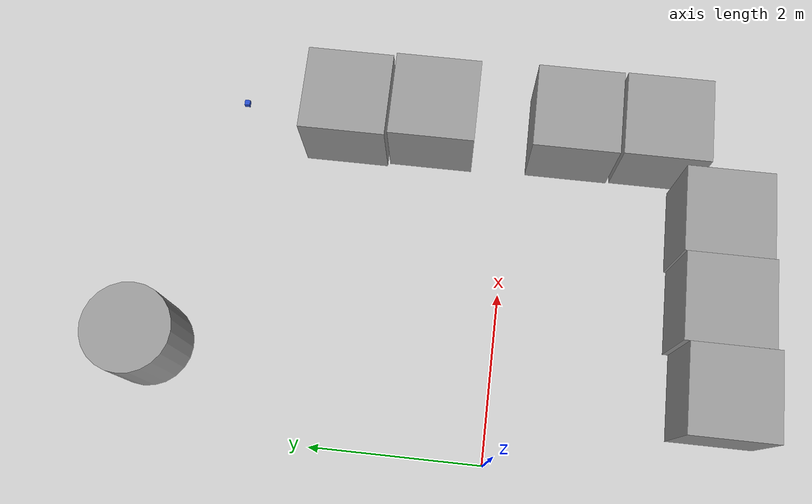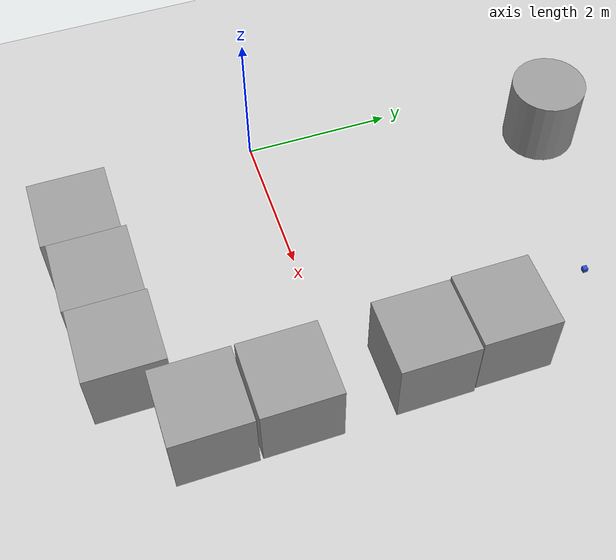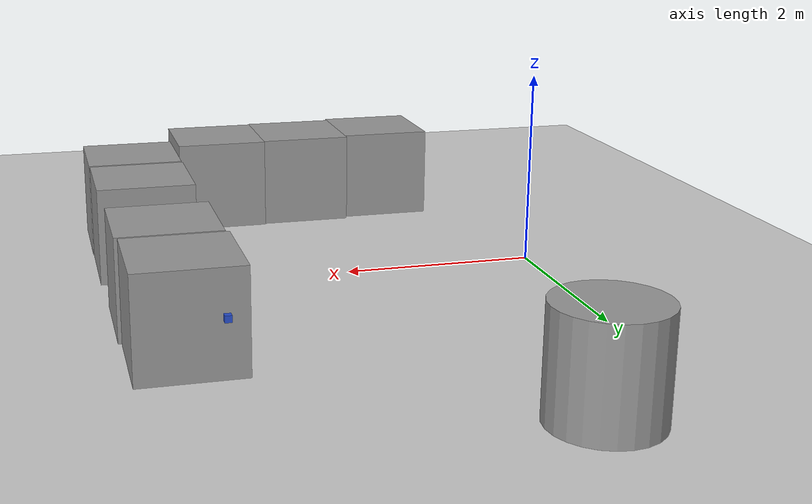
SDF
<sdf version="1.4">
 <world name="default">
  <model name="ground_plane">
   <static>1</static>
   <link name="link">
    <collision name="collision">
     <geometry><plane><normal>0 0 1</normal><size>100 100</size></plane></geometry>
     <surface><friction><ode><mu>100</mu><mu2>50</mu2></ode></friction></surface>
    </collision>
    <visual name="visual">
     <cast_shadows>0</cast_shadows>
     <geometry><plane><normal>0 0 1</normal><size>100 100</size></plane></geometry>
     <material>
      <script><uri>file://media/materials/scripts/gazebo.material</uri><name>Gazebo/Grey</name></script>
     </material>
    </visual>
    <velocity_decay><linear>0</linear><angular>0</angular></velocity_decay>
   </link>
  </model>
  <light name="sun" type="directional">
   <pose>0 0 10 0 -0 0</pose>
   <diffuse>0.8 0.8 0.8 1</diffuse>
   <specular>0.2 0.2 0.2 1</specular>
   <attenuation>
    <range>1000</range>
    <constant>0.9</constant>
    <linear>0.01</linear>
    <quadratic>0.001</quadratic>
   </attenuation>
   <direction>-0.5 0.1 -0.9</direction>
  </light>
  <model name="demo_cube">
   <static>0</static>
   <link name="link">
    <inertial>
     <mass>0.25</mass>
     <inertia><ixx>0.001</ixx><ixy>0</ixy><ixz>0</ixz><iyy>0.001</iyy><iyz>0</iyz><izz>0.001</izz></inertia>
    </inertial>
    <collision name="collision">
     <geometry><box><size>0.06 0.06 0.06</size></box></geometry>
     <surface>
      <friction><ode><mu>30</mu><mu2>30</mu2></ode></friction>
      <contact><ode><kp>1e+06</kp><kd>100</kd><max_vel>1</max_vel><min_depth>0.002</min_depth></ode></contact>
     </surface>
    </collision>
    <visual name="visual">
     <geometry><box><size>0.06 0.06 0.06</size></box></geometry>
     <material>
      <script><uri>file://media/materials/scripts/gazebo.material</uri><name>Gazebo/Blue</name></script>
     </material>
    </visual>
    <velocity_decay><linear>0</linear><angular>0</angular></velocity_decay>
   </link>
   <pose>3.8 3.15 0.802999 0 -0 0</pose>
  </model>
  <physics type="ode">
   <max_step_size>0.001</max_step_size>
   <real_time_factor>1</real_time_factor>
   <real_time_update_rate>1000</real_time_update_rate>
   <gravity>0 0 -9.8</gravity>
  </physics>
  <scene><ambient>0.4 0.4 0.4 1</ambient><background>0.7 0.7 0.7 1</background><shadows>1</shadows></scene>
  <spherical_coordinates>
   <surface_model>EARTH_WGS84</surface_model>
   <latitude_deg>0</latitude_deg>
   <longitude_deg>0</longitude_deg>
   <elevation>0</elevation>
   <heading_deg>0</heading_deg>
  </spherical_coordinates>
  <model name="unit_box_1">
   <pose>0.999999 -2.54836 0.5 0 -0 1e-06</pose>
   <link name="link">
    <inertial>
     <mass>1</mass>
     <inertia><ixx>1</ixx><ixy>0</ixy><ixz>0</ixz><iyy>1</iyy><iyz>0</iyz><izz>1</izz></inertia>
    </inertial>
    <collision name="collision"><geometry><box><size>1 1 1</size></box></geometry></collision>
    <visual name="visual">
     <geometry><box><size>1 1 1</size></box></geometry>
     <material>
      <script><uri>file://media/materials/scripts/gazebo.material</uri><name>Gazebo/Grey</name></script>
     </material>
    </visual>
    <velocity_decay><linear>0</linear><angular>0</angular></velocity_decay>
   </link>
   <static>0</static>
  </model>
  <model name="unit_box_2">
   <pose>4.03343 0.969941 0.5 0 -0 0</pose>
   <link name="link">
    <inertial>
     <mass>1</mass>
     <inertia><ixx>1</ixx><ixy>0</ixy><ixz>0</ixz><iyy>1</iyy><iyz>0</iyz><izz>1</izz></inertia>
    </inertial>
    <collision name="collision"><geometry><box><size>1 1 1</size></box></geometry></collision>
    <visual name="visual">
     <geometry><box><size>1 1 1</size></box></geometry>
     <material>
      <script><uri>file://media/materials/scripts/gazebo.material</uri><name>Gazebo/Grey</name></script>
     </material>
    </visual>
    <velocity_decay><linear>0</linear><angular>0</angular></velocity_decay>
   </link>
   <static>0</static>
  </model>
  <model name="unit_cylinder_1">
   <pose>1 4 0.499992 0 -0 0</pose>
   <link name="link">
    <inertial>
     <mass>1</mass>
     <inertia><ixx>1</ixx><ixy>0</ixy><ixz>0</ixz><iyy>1</iyy><iyz>0</iyz><izz>1</izz></inertia>
    </inertial>
    <collision name="collision">
     <geometry><cylinder><radius>0.5</radius><length>1</length></cylinder></geometry>
    </collision>
    <visual name="visual">
     <geometry><cylinder><radius>0.5</radius><length>1</length></cylinder></geometry>
     <material>
      <script><uri>file://media/materials/scripts/gazebo.material</uri><name>Gazebo/Grey</name></script>
     </material>
    </visual>
    <velocity_decay><linear>0</linear><angular>0</angular></velocity_decay>
   </link>
   <static>0</static>
  </model>
  <model name="unit_box_3">
   <pose>4.06195 -0.696635 0.5 0 -0 0</pose>
   <link name="link">
    <inertial>
     <mass>1</mass>
     <inertia><ixx>1</ixx><ixy>0</ixy><ixz>0</ixz><iyy>1</iyy><iyz>0</iyz><izz>1</izz></inertia>
    </inertial>
    <collision name="collision"><geometry><box><size>1 1 1</size></box></geometry></collision>
    <visual name="visual">
     <geometry><box><size>1 1 1</size></box></geometry>
     <material>
      <script><uri>file://media/materials/scripts/gazebo.material</uri><name>Gazebo/Grey</name></script>
     </material>
    </visual>
    <velocity_decay><linear>0</linear><angular>0</angular></velocity_decay>
   </link>
   <static>0</static>
  </model>
  <model name="unit_box_1_0">
   <pose>4.06894 -1.73505 0.5 0 -0 2e-06</pose>
   <link name="link">
    <inertial>
     <mass>1</mass>
     <inertia><ixx>1</ixx><ixy>0</ixy><ixz>0</ixz><iyy>1</iyy><iyz>0</iyz><izz>1</izz></inertia>
    </inertial>
    <collision name="collision"><geometry><box><size>1 1 1</size></box></geometry></collision>
    <visual name="visual">
     <geometry><box><size>1 1 1</size></box></geometry>
     <material>
      <script><uri>file://media/materials/scripts/gazebo.material</uri><name>Gazebo/Grey</name></script>
     </material>
    </visual>
    <velocity_decay><linear>0</linear><angular>0</angular></velocity_decay>
   </link>
   <static>0</static>
  </model>
  <model name="unit_box_2_0">
   <pose>3 -2.45496 0.5 0 -0 1e-06</pose>
   <link name="link">
    <inertial>
     <mass>1</mass>
     <inertia><ixx>1</ixx><ixy>0</ixy><ixz>0</ixz><iyy>1</iyy><iyz>0</iyz><izz>1</izz></inertia>
    </inertial>
    <collision name="collision"><geometry><box><size>1 1 1</size></box></geometry></collision>
    <visual name="visual">
     <geometry><box><size>1 1 1</size></box></geometry>
     <material>
      <script><uri>file://media/materials/scripts/gazebo.material</uri><name>Gazebo/Grey</name></script>
     </material>
    </visual>
    <velocity_decay><linear>0</linear><angular>0</angular></velocity_decay>
   </link>
   <static>0</static>
  </model>
  <model name="unit_box_3_0">
   <pose>2 -2.48241 0.5 0 -0 1e-06</pose>
   <link name="link">
    <inertial>
     <mass>1</mass>
     <inertia><ixx>1</ixx><ixy>0</ixy><ixz>0</ixz><iyy>1</iyy><iyz>0</iyz><izz>1</izz></inertia>
    </inertial>
    <collision name="collision"><geometry><box><size>1 1 1</size></box></geometry></collision>
    <visual name="visual">
     <geometry><box><size>1 1 1</size></box></geometry>
     <material>
      <script><uri>file://media/materials/scripts/gazebo.material</uri><name>Gazebo/Grey</name></script>
     </material>
    </visual>
    <velocity_decay><linear>0</linear><angular>0</angular></velocity_decay>
   </link>
   <static>0</static>
  </model>
  <model name="unit_box_4">
   <pose>4 2 0.5 0 -0 0</pose>
   <link name="link">
    <inertial>
     <mass>1</mass>
     <inertia><ixx>1</ixx><ixy>0</ixy><ixz>0</ixz><iyy>1</iyy><iyz>0</iyz><izz>1</izz></inertia>
    </inertial>
    <collision name="collision"><geometry><box><size>1 1 1</size></box></geometry></collision>
    <visual name="visual">
     <geometry><box><size>1 1 1</size></box></geometry>
     <material>
      <script><uri>file://media/materials/scripts/gazebo.material</uri><name>Gazebo/Grey</name></script>
     </material>
    </visual>
    <velocity_decay><linear>0</linear><angular>0</angular></velocity_decay>
   </link>
   <static>0</static>
  </model>
 </world>
</sdf>
